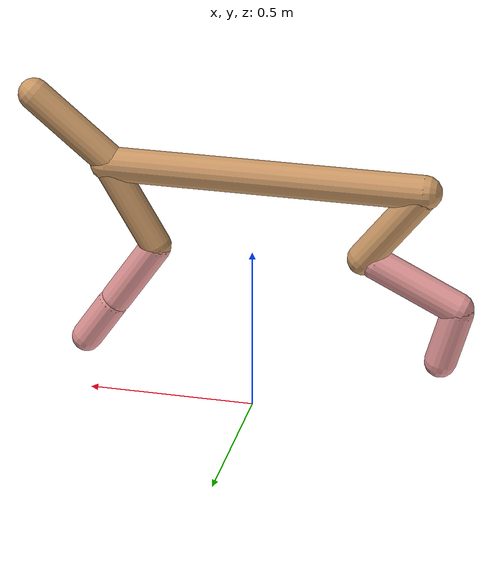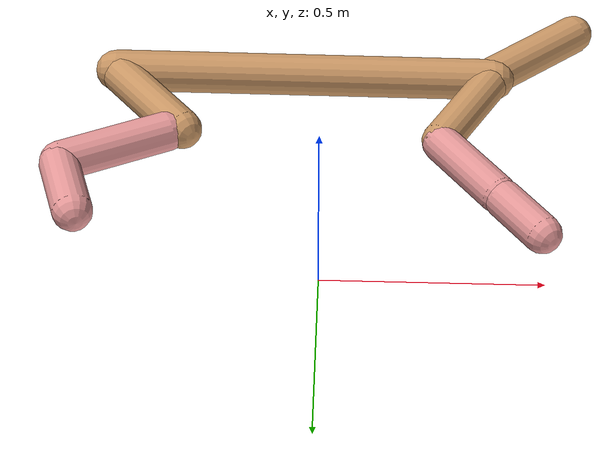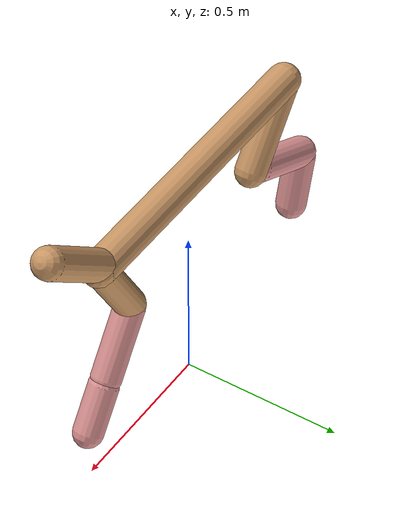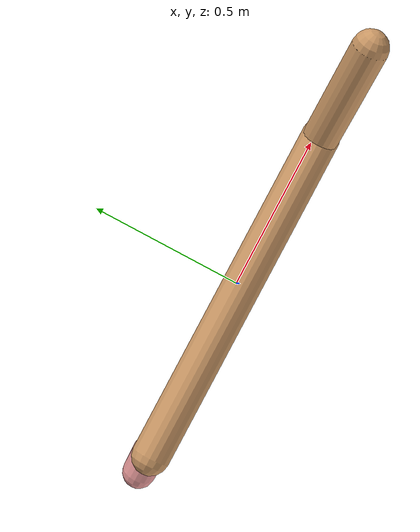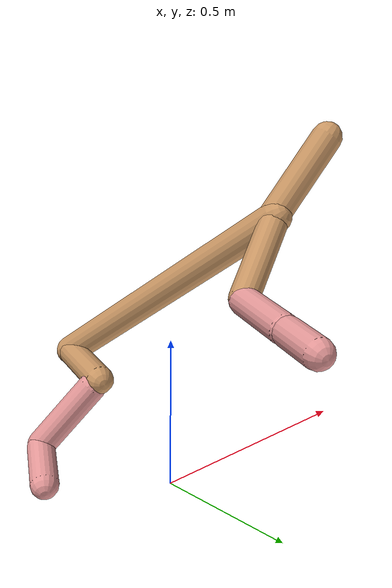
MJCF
<mujoco model="cheetah">
  <compiler angle="radian" coordinate="local" inertiafromgeom="true" settotalmass="14" />
  <default>
    <joint armature=".1" damping=".01" limited="true" solimplimit="0 .8 .03" solreflimit=".02 1" stiffness="8" />
    <geom conaffinity="0" condim="3" contype="1" friction="0.8 .1 .1" rgba="0.8 0.6 .4 1" solimp="0.0 0.8 0.01" solref="0.02 1" />
    <motor ctrllimited="true" ctrlrange="-1 1" />
  </default>
  <size nstack="300000" nuser_geom="1" />
  <option gravity="0 0 -9.81" timestep="0.01" />
  <worldbody>
    <body name="torso" pos="0.0 0.0 0.7396738885046508">
      <joint armature="0" axis="1 0 0" damping="0" limited="false" name="ignorex" pos="0 0 0" stiffness="0" type="slide" />
      <joint armature="0" axis="0 0 1" damping="0" limited="false" name="ignorez" pos="0 0 0" stiffness="0" type="slide" />
      <joint armature="0" axis="0 1 0" damping="0" limited="false" name="ignorey" pos="0 0 0" stiffness="0" type="hinge" />
      <geom fromto="-0.5 0.0 0.0 0.43150999406033597 0.0 0.0" name="torso" size="0.05044967500440822" type="capsule" />
      <geom axisangle="0 1 0 .87" name="head" pos="0.5315099940603359 0.0 0.1" size="0.047561430223998356 0.15" type="capsule" />

      <body name="bthigh" pos="-.5 0 0">
        <joint axis="0 1 0" damping="6" name="bthigh" pos="0 0 0" range="-.52 1.05" stiffness="240" type="hinge" />
        <geom axisangle="0 1 0 -3.8" name="bthigh" pos="0.09198045191238181 0.0 -0.11957458748609635" size="0.04774544760047849 0.1318469631789963" type="capsule" />
        <body name="bshin" pos="0.14396090382476362 0.0 -0.2291491749721927">
          <joint axis="0 1 0" damping="4.5" name="bshin" pos="0 0 0" range="-.785 .785" stiffness="180" type="hinge" />
          <geom axisangle="0 1 0 -2.03" name="bshin" pos="-0.12782989609283227 0.0 -0.06391494804641613" rgba="0.9 0.6 0.6 1" size="0.04774544760047849 0.13639341018516857" type="capsule" />
          <body name="bfoot" pos="-0.25565979218566454 0.0 -0.12782989609283227">
            <joint axis="0 1 0" damping="3" name="bfoot" pos="0 0 0" range="-.4 .785" stiffness="120" type="hinge" />
            <geom axisangle="0 1 0 -.27" name="bfoot" pos="0.02748058986456512 0.0 -0.08885390722876056" rgba="0.9 0.6 0.6 1" size="0.04774544760047849 0.08547320371603898" type="capsule" />
            <inertial mass="10" />
          </body>
        </body>
      </body>
      <body name="fthigh" pos="0.43150999406033597 0.0 0.0">
        <joint axis="0 1 0" damping="4.5" name="fthigh" pos="0 0 0" range="-1.5 0.8" stiffness="180" type="hinge" />
        <geom axisangle="0 1 0 .52" name="fthigh" pos="-0.07278110830964411 0.0 -0.12476761424510419" size="0.04569206149388226 0.13851948448861776" type="capsule" />
        <body name="fshin" pos="-0.14556221661928823 0.0 -0.24953522849020837">
          <joint axis="0 1 0" damping="3" name="fshin" pos="0 0 0" range="-1.2 1.1" stiffness="120" type="hinge" />
          <geom axisangle="0 1 0 -.6" name="fshin" pos="0.06757556570826069 0.0 -0.09356616790374557" rgba="0.9 0.6 0.6 1" size="0.04569206149388226 0.11039898763754497" type="capsule" />
          <body name="ffoot" pos="0.13515113141652138 0.0 -0.18713233580749114">
            <joint axis="0 1 0" damping="1.5" name="ffoot" pos="0 0 0" range="-3.1 -0.3" stiffness="60" type="hinge" />
            <geom axisangle="0 1 0 -.6" name="ffoot" pos="0.04657089638808271 0.0 -0.07244361660368423" rgba="0.9 0.6 0.6 1" size="0.04569206149388226 0.07290499183611461" type="capsule" />
            <inertial mass="10" />
          </body>
        </body>
      </body>
    </body>
  </worldbody>
  <actuator>
    <motor gear="120" joint="bthigh" name="bthigh" />
    <motor gear="90" joint="bshin" name="bshin" />
    <motor gear="60" joint="bfoot" name="bfoot" />
    <motor gear="120" joint="fthigh" name="fthigh" />
    <motor gear="60" joint="fshin" name="fshin" />
    <motor gear="30" joint="ffoot" name="ffoot" />
  </actuator>
</mujoco>
